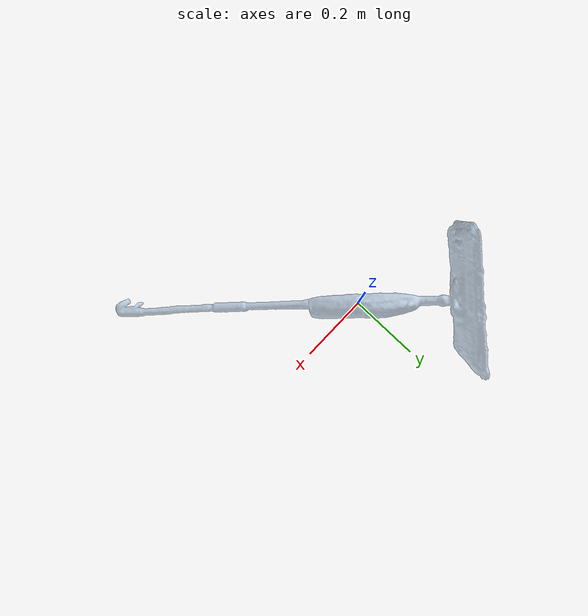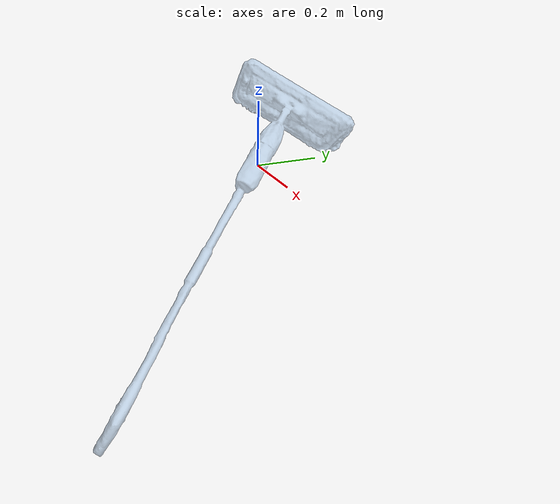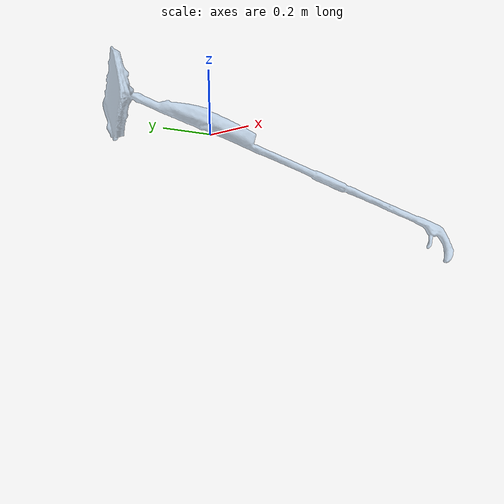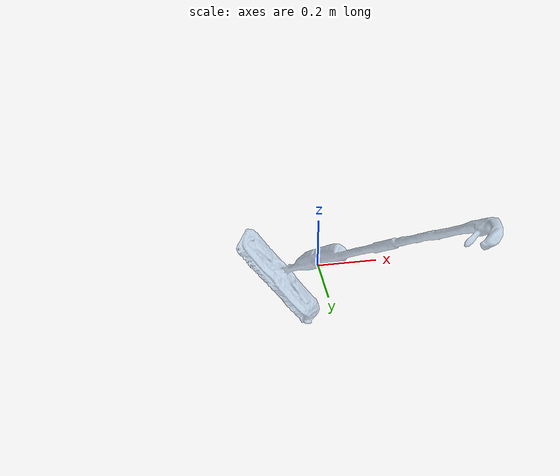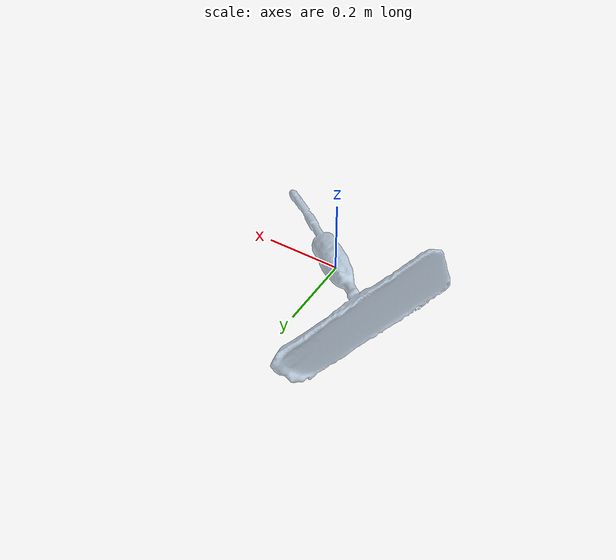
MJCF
<mujoco model="mop">
    <compiler meshdir="./"/>

    <default>
        <geom friction="0.9 0.5 0.5" rgba="0.7 0.8 0.9 0.7"/>
        <joint damping="0.5"/>
    </default>

    <asset>
        <mesh name="mop_mesh" file="mop.obj" scale="1 1 1"/>
    </asset>

    <worldbody>
        <body name="mop_link">
            <inertial pos="0 0 0" mass="0.1" diaginertia="0.002 0.002 0.002"/>
            <geom name="mop" type="mesh" mesh="mop_mesh"
                  pos="0 0 0" quat="1 0 0 0"
                  rgba="0.7 0.8 0.9 0.7"
                  friction="0.9 0.5 0.5"
                  solref="0.02 1"
                  solimp="0.9 0.95 0.001"/>
        </body>
    </worldbody>
</mujoco>
